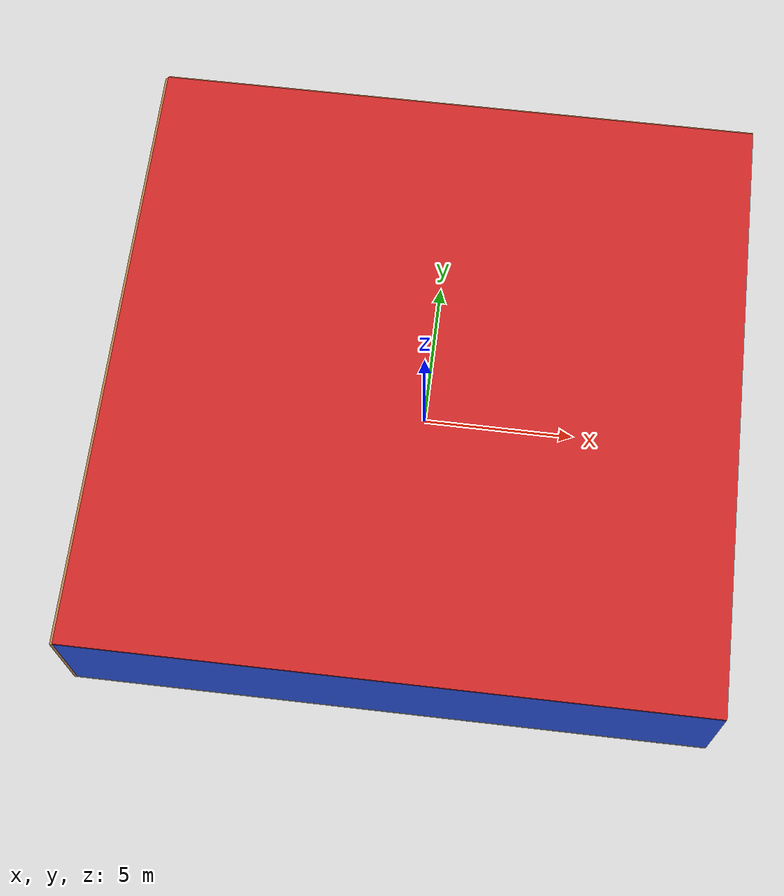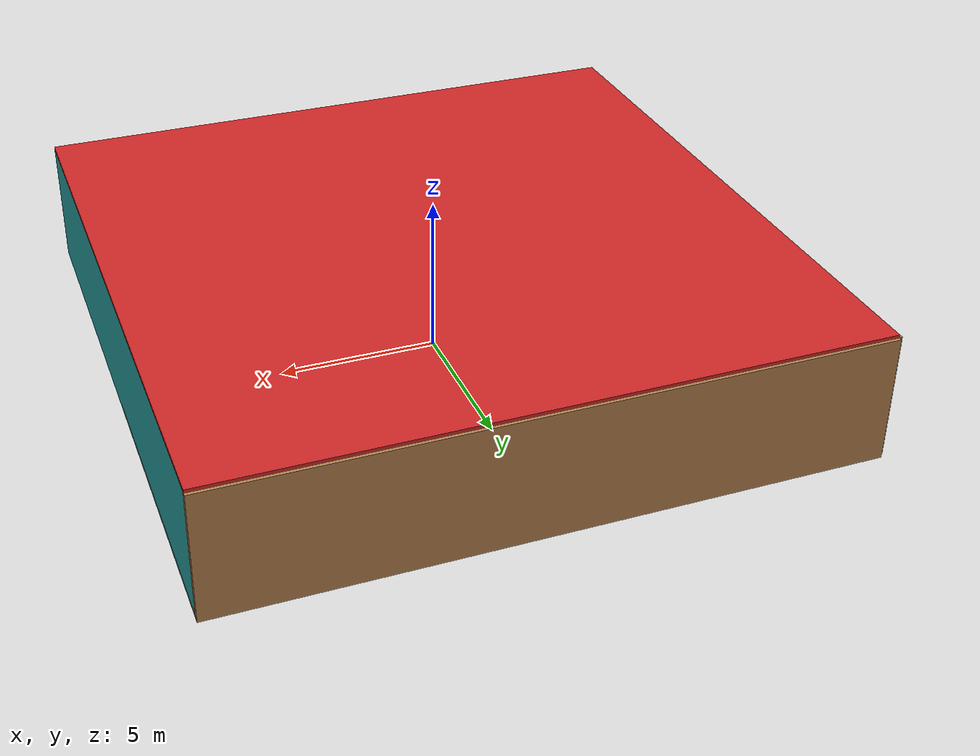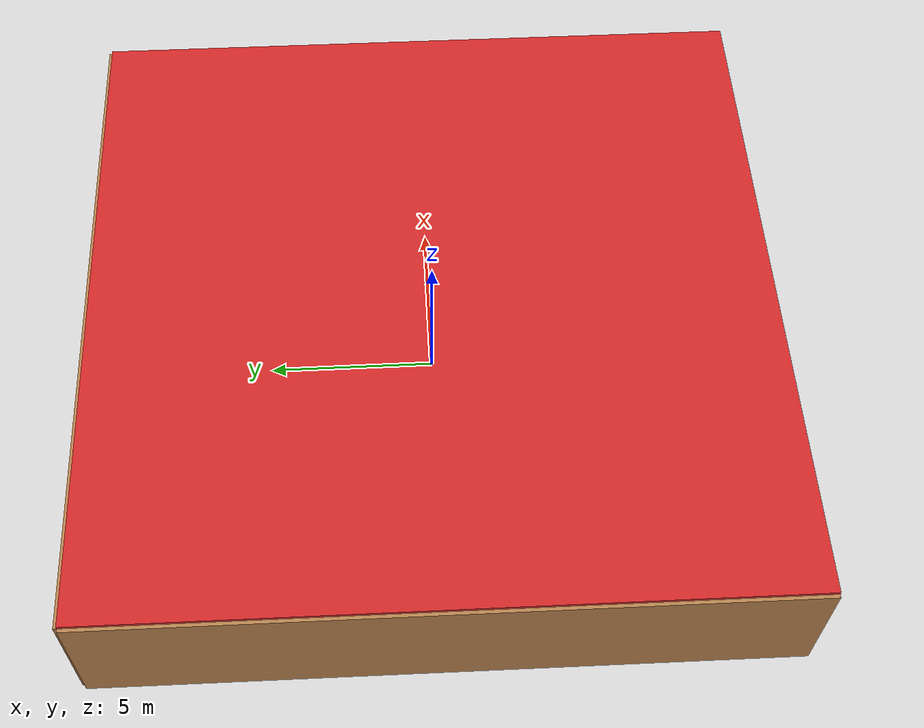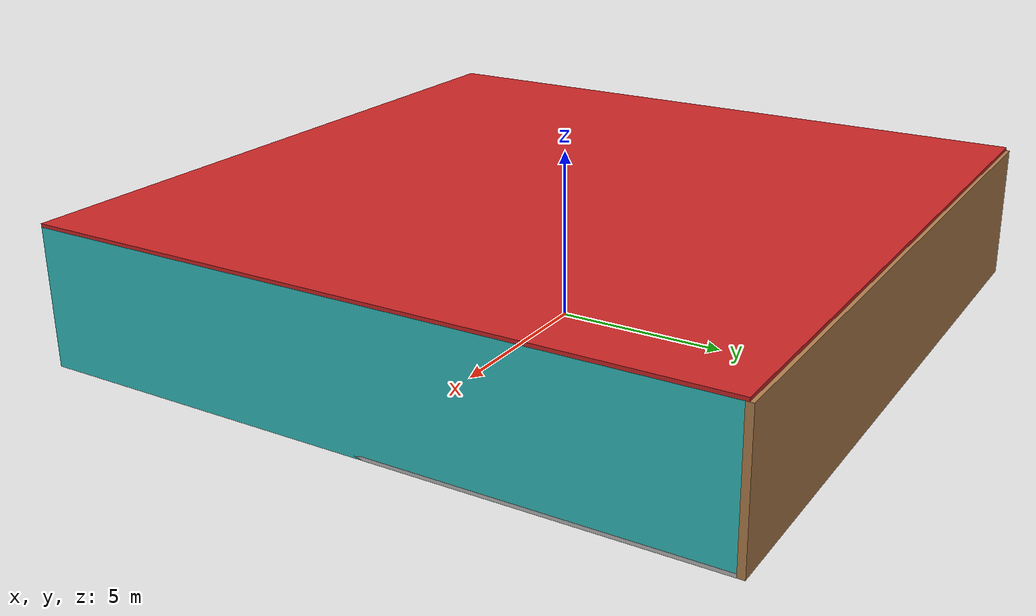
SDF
<sdf version="1.4">
 <world name="default">
  <physics type="ode">
   <max_step_size>0.001</max_step_size>
   <real_time_factor>1</real_time_factor>
   <real_time_update_rate>1000</real_time_update_rate>
   <gravity>0 0 -9.8</gravity>
  </physics>
  <scene><ambient>0.4 0.4 0.4 1</ambient><background>0.7 0.7 0.7 1</background><shadows>1</shadows></scene>
  <model name="Surrounding">
   <static>1</static>
   <link name="Ceiling">
    <collision name="Ceiling_Collision"><geometry><box><size>20 20 0.1</size></box></geometry></collision>
    <visual name="Ceiling_Visual">
     <geometry><box><size>20 20 0.1</size></box></geometry>
     <material>
      <script><uri>file://media/materials/scripts/gazebo.material</uri><name>Gazebo/RedBright</name></script>
     </material>
    </visual>
    <pose>0 0 4.05 0 0 0</pose>
   </link>
   <link name="Wall_South">
    <collision name="Wall_South_Collision">
     <geometry><box><size>20 0 4</size></box></geometry>
     <pose>0 0 2 0 -0 0</pose>
    </collision>
    <visual name="Wall_South_Visual">
     <pose>0 0 2 0 -0 0</pose>
     <geometry><box><size>20 0 4</size></box></geometry>
     <material>
      <script><uri>file://media/materials/scripts/gazebo.material</uri><name>Gazebo/BlueGlow</name></script>
     </material>
    </visual>
    <velocity_decay><linear>0</linear><angular>0</angular></velocity_decay>
    <pose>0 -10 0 0 -0 0</pose>
   </link>
   <link name="Wall_East">
    <collision name="Wall_21_Collision">
     <geometry><box><size>20 0 4</size></box></geometry>
     <pose>0 0 2 0 -0 0</pose>
    </collision>
    <visual name="Wall_21_Visual">
     <pose>0 0 2 0 -0 0</pose>
     <geometry><box><size>20 0 4</size></box></geometry>
     <material>
      <script>
       <uri>file://media/materials/scripts/gazebo.material</uri>
       <name>Gazebo/TurquoiseGlowOutline</name>
      </script>
     </material>
    </visual>
    <velocity_decay><linear>0</linear><angular>0</angular></velocity_decay>
    <pose>10 0 0 0 -0 1.5708</pose>
   </link>
   <link name="Wall_North">
    <collision name="Wall_22_Collision">
     <geometry><box><size>20 0.2 4</size></box></geometry>
     <pose>0 0 2 0 -0 0</pose>
    </collision>
    <visual name="Wall_22_Visual">
     <pose>0 0 2 0 -0 0</pose>
     <geometry><box><size>20 0.2 4</size></box></geometry>
     <material>
      <script><uri>file://media/materials/scripts/gazebo.material</uri><name>Gazebo/WoodFloor</name></script>
     </material>
    </visual>
    <velocity_decay><linear>0</linear><angular>0</angular></velocity_decay>
    <pose>0 10 0 0 -0 0</pose>
   </link>
   <link name="Wall_West">
    <collision name="Wall_23_Collision">
     <geometry><box><size>20 0.2 4</size></box></geometry>
     <pose>0 0 2 0 -0 0</pose>
    </collision>
    <visual name="Wall_23_Visual">
     <pose>0 0 2 0 -0 0</pose>
     <geometry><box><size>20 0.2 4</size></box></geometry>
     <material>
      <script><uri>file://media/materials/scripts/gazebo.material</uri><name>Gazebo/WoodFloor</name></script>
     </material>
    </visual>
    <velocity_decay><linear>0</linear><angular>0</angular></velocity_decay>
    <pose>-10 0 0 0 0 -1.5708</pose>
   </link>
   <link name="Ground_link">
    <collision name="collision">
     <pose>0 0 .05 0 -0 0</pose>
     <geometry><box><size>20 20 0.1</size></box></geometry>
    </collision>
    <visual name="visual">
     <pose>0 0 .05 0 -0 0</pose>
     <geometry><box><size>20 20 0.1</size></box></geometry>
     <material>
      <script><uri>file://media/materials/scripts/gazebo.material</uri><name>Gazebo/CloudySky</name></script>
     </material>
    </visual>
   </link>
   <static>1</static>
  </model>
  <spherical_coordinates>
   <surface_model>EARTH_WGS84</surface_model>
   <latitude_deg>0</latitude_deg>
   <longitude_deg>0</longitude_deg>
   <elevation>0</elevation>
   <heading_deg>0</heading_deg>
  </spherical_coordinates>
  <light name="lightball_0" type="diffuse">
   <diffuse>0.8 0.8 0.8 1</diffuse>
   <specular>0.2 0.2 0.2 1</specular>
   <attenuation>
    <range>100</range>
    <constant>0.7</constant>
    <linear>0.01</linear>
    <quadratic>0.001</quadratic>
   </attenuation>
   <direction>-0.5 0.1 -0.9</direction>
   <pose>-0.675170414889 3.6955001693 3.40380626807 0 0 0</pose>
  </light>
  <light name="lightball_1" type="diffuse">
   <diffuse>0.8 0.8 0.8 1</diffuse>
   <specular>0.2 0.2 0.2 1</specular>
   <attenuation>
    <range>100</range>
    <constant>0.7</constant>
    <linear>0.01</linear>
    <quadratic>0.001</quadratic>
   </attenuation>
   <direction>-0.5 0.1 -0.9</direction>
   <pose>8.29695837438 -6.99537153061 1.27918283089 0 0 0</pose>
  </light>
  <light name="lightball_2" type="diffuse">
   <diffuse>0.8 0.8 0.8 1</diffuse>
   <specular>0.2 0.2 0.2 1</specular>
   <attenuation>
    <range>100</range>
    <constant>0.7</constant>
    <linear>0.01</linear>
    <quadratic>0.001</quadratic>
   </attenuation>
   <direction>-0.5 0.1 -0.9</direction>
   <pose>4.09140000995 0.68274007651 2.43408225092 0 0 0</pose>
  </light>
  <light name="lightball_3" type="diffuse">
   <diffuse>0.8 0.8 0.8 1</diffuse>
   <specular>0.2 0.2 0.2 1</specular>
   <attenuation>
    <range>100</range>
    <constant>0.7</constant>
    <linear>0.01</linear>
    <quadratic>0.001</quadratic>
   </attenuation>
   <direction>-0.5 0.1 -0.9</direction>
   <pose>3.45101051176 8.75628473034 3.15624137384 0 0 0</pose>
  </light>
  <light name="lightball_4" type="diffuse">
   <diffuse>0.8 0.8 0.8 1</diffuse>
   <specular>0.2 0.2 0.2 1</specular>
   <attenuation>
    <range>100</range>
    <constant>0.7</constant>
    <linear>0.01</linear>
    <quadratic>0.001</quadratic>
   </attenuation>
   <direction>-0.5 0.1 -0.9</direction>
   <pose>0.469201430017 -1.4128862966 2.19794291445 0 0 0</pose>
  </light>
  <light name="lightball_5" type="diffuse">
   <diffuse>0.8 0.8 0.8 1</diffuse>
   <specular>0.2 0.2 0.2 1</specular>
   <attenuation>
    <range>100</range>
    <constant>0.7</constant>
    <linear>0.01</linear>
    <quadratic>0.001</quadratic>
   </attenuation>
   <direction>-0.5 0.1 -0.9</direction>
   <pose>4.30645475282 9.69672637376 0.969844303035 0 0 0</pose>
  </light>
  <light name="lightball_6" type="diffuse">
   <diffuse>0.8 0.8 0.8 1</diffuse>
   <specular>0.2 0.2 0.2 1</specular>
   <attenuation>
    <range>100</range>
    <constant>0.7</constant>
    <linear>0.01</linear>
    <quadratic>0.001</quadratic>
   </attenuation>
   <direction>-0.5 0.1 -0.9</direction>
   <pose>0.477365207831 4.32783117221 1.58657300116 0 0 0</pose>
  </light>
  <light name="lightball_7" type="diffuse">
   <diffuse>0.8 0.8 0.8 1</diffuse>
   <specular>0.2 0.2 0.2 1</specular>
   <attenuation>
    <range>100</range>
    <constant>0.7</constant>
    <linear>0.01</linear>
    <quadratic>0.001</quadratic>
   </attenuation>
   <direction>-0.5 0.1 -0.9</direction>
   <pose>-6.33866686101 5.25716199143 0.524758020504 0 0 0</pose>
  </light>
  <light name="lightball_8" type="diffuse">
   <diffuse>0.8 0.8 0.8 1</diffuse>
   <specular>0.2 0.2 0.2 1</specular>
   <attenuation>
    <range>100</range>
    <constant>0.7</constant>
    <linear>0.01</linear>
    <quadratic>0.001</quadratic>
   </attenuation>
   <direction>-0.5 0.1 -0.9</direction>
   <pose>-0.660100608048 -0.612275855086 2.55540641058 0 0 0</pose>
  </light>
  <light name="lightball_9" type="diffuse">
   <diffuse>0.8 0.8 0.8 1</diffuse>
   <specular>0.2 0.2 0.2 1</specular>
   <attenuation>
    <range>100</range>
    <constant>0.7</constant>
    <linear>0.01</linear>
    <quadratic>0.001</quadratic>
   </attenuation>
   <direction>-0.5 0.1 -0.9</direction>
   <pose>-4.43826994519 6.59521706251 3.26837314422 0 0 0</pose>
  </light>
  <light name="lightball_10" type="diffuse">
   <diffuse>0.8 0.8 0.8 1</diffuse>
   <specular>0.2 0.2 0.2 1</specular>
   <attenuation>
    <range>100</range>
    <constant>0.7</constant>
    <linear>0.01</linear>
    <quadratic>0.001</quadratic>
   </attenuation>
   <direction>-0.5 0.1 -0.9</direction>
   <pose>-3.63069092167 7.73578496878 3.59298457824 0 0 0</pose>
  </light>
  <light name="lightball_11" type="diffuse">
   <diffuse>0.8 0.8 0.8 1</diffuse>
   <specular>0.2 0.2 0.2 1</specular>
   <attenuation>
    <range>100</range>
    <constant>0.7</constant>
    <linear>0.01</linear>
    <quadratic>0.001</quadratic>
   </attenuation>
   <direction>-0.5 0.1 -0.9</direction>
   <pose>4.33134909744 -2.90903610717 3.56446832937 0 0 0</pose>
  </light>
  <light name="lightball_12" type="diffuse">
   <diffuse>0.8 0.8 0.8 1</diffuse>
   <specular>0.2 0.2 0.2 1</specular>
   <attenuation>
    <range>100</range>
    <constant>0.7</constant>
    <linear>0.01</linear>
    <quadratic>0.001</quadratic>
   </attenuation>
   <direction>-0.5 0.1 -0.9</direction>
   <pose>7.95302800959 -5.47416035841 1.77798113407 0 0 0</pose>
  </light>
  <light name="lightball_13" type="diffuse">
   <diffuse>0.8 0.8 0.8 1</diffuse>
   <specular>0.2 0.2 0.2 1</specular>
   <attenuation>
    <range>100</range>
    <constant>0.7</constant>
    <linear>0.01</linear>
    <quadratic>0.001</quadratic>
   </attenuation>
   <direction>-0.5 0.1 -0.9</direction>
   <pose>-5.86941374848 7.25846711081 3.88799752352 0 0 0</pose>
  </light>
  <include>
   <uri>model://robocup_3Dsim_goal</uri>
   <pose>-0.648209493575 0.759243417736 0 0 0 3.12563244187</pose>
  </include>
  <include><uri>model://table</uri><pose>0.443860010615 0.516666495945 0 0 0 1.70552147057</pose></include>
  <include><uri>model://cabinet</uri><pose>4.19275598618 -6.53940726722 0 0 0 1.4829205263</pose></include>
  <include>
   <uri>model://textured_shapes</uri>
   <pose>5.56565834178 -2.11728339546 0 0 0 2.62901510929</pose>
  </include>
  <include><uri>model://table</uri><pose>4.83480385279 4.32748427373 0 0 0 1.42571518658</pose></include>
 </world>
</sdf>

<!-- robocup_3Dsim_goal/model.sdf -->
<sdf version="1.5">
  <model name="robocup_3d_goal">
    <static>true</static>
    <link name="left_post">
      <pose>0 1.05 0.45 0 0 0</pose>
      <collision name="collision">
        <geometry>
          <cylinder>
            <radius>0.05</radius>
            <length>0.9</length>
          </cylinder>
        </geometry>
      </collision>
      <visual name="visual">
        <geometry>
          <cylinder>
            <radius>0.05</radius>
            <length>0.9</length>
          </cylinder>
        </geometry>
        <material>
          <script>
            <uri>file://media/materials/scripts/gazebo.material</uri>
            <name>Gazebo/ZincYellow</name>
          </script>
        </material>
      </visual>
    </link>
    <link name="left_support_horiz_lower">
      <pose>0.30 1.05 0.01 0 0 0</pose>
      <collision name="collision">
        <geometry>
          <box>
            <size>0.50 0.02 0.02</size>
          </box>
        </geometry>
      </collision>
      <visual name="visual">
        <geometry>
          <box>
            <size>0.50 0.02 0.02</size>
          </box>
        </geometry>
        <material>
          <script>
            <uri>file://media/materials/scripts/gazebo.material</uri>
            <name>Gazebo/White</name>
          </script>
        </material>
      </visual>
    </link>
    <link name="left_support_horiz_upper">
      <pose>0.30 1.05 0.79 0 0 0</pose>
      <collision name="collision">
        <geometry>
          <box>
            <size>0.50 0.02 0.02</size>
          </box>
        </geometry>
      </collision>
      <visual name="visual">
        <geometry>
          <box>
            <size>0.50 0.02 0.02</size>
          </box>
        </geometry>
        <material>
          <script>
            <uri>file://media/materials/scripts/gazebo.material</uri>
            <name>Gazebo/White</name>
          </script>
        </material>
      </visual>
    </link>
    <link name="left_support_vertical">
      <pose>0.56 1.05 0.4 0 1.5708 0</pose>
      <collision name="collision">
        <geometry>
          <box>
            <size>0.80 0.02 0.02</size>
          </box>
        </geometry>
      </collision>
      <visual name="visual">
        <geometry>
          <box>
            <size>0.80 0.02 0.02</size>
          </box>
        </geometry>
        <material>
          <script>
            <uri>file://media/materials/scripts/gazebo.material</uri>
            <name>Gazebo/White</name>
          </script>
        </material>
      </visual>
    </link>
    <link name="right_support_horiz_lower">
      <pose>0.30 -1.05 0.01 0 0 0</pose>
      <collision name="collision">
        <geometry>
          <box>
            <size>0.50 0.02 0.02</size>
          </box>
        </geometry>
      </collision>
      <visual name="visual">
        <geometry>
          <box>
            <size>0.50 0.02 0.02</size>
          </box>
        </geometry>
        <material>
          <script>
            <uri>file://media/materials/scripts/gazebo.material</uri>
            <name>Gazebo/White</name>
          </script>
        </material>
      </visual>
    </link>
    <link name="right_support_horiz_upper">
      <pose>0.30 -1.05 0.79 0 0 0</pose>
      <collision name="collision">
        <geometry>
          <box>
            <size>0.50 0.02 0.02</size>
          </box>
        </geometry>
      </collision>
      <visual name="visual">
        <geometry>
          <box>
            <size>0.50 0.02 0.02</size>
          </box>
        </geometry>
        <material>
          <script>
            <uri>file://media/materials/scripts/gazebo.material</uri>
            <name>Gazebo/White</name>
          </script>
        </material>
      </visual>
    </link>
    <link name="right_support_vertical">
      <pose>0.56 -1.05 0.4 0 1.5708 0</pose>
      <collision name="collision">
        <geometry>
          <box>
            <size>0.80 0.02 0.02</size>
          </box>
        </geometry>
      </collision>
      <visual name="visual">
        <geometry>
          <box>
            <size>0.80 0.02 0.02</size>
          </box>
        </geometry>
        <material>
          <script>
            <uri>file://media/materials/scripts/gazebo.material</uri>
            <name>Gazebo/White</name>
          </script>
        </material>
      </visual>
    </link>
    <link name="center_support_horiz_lower">
      <pose>0.56 0 0.01 0 1.5708 0</pose>
      <collision name="collision">
        <geometry>
          <box>
            <size>0.02 2.08 0.02</size>
          </box>
        </geometry>
      </collision>
      <visual name="visual">
        <geometry>
          <box>
            <size>0.02 2.08 0.02</size>
          </box>
        </geometry>
        <material>
          <script>
            <uri>file://media/materials/scripts/gazebo.material</uri>
            <name>Gazebo/White</name>
          </script>
        </material>
      </visual>
    </link>
    <link name="center_support_horiz_upper">
      <pose>0.56 0 0.79 0 1.5708 0</pose>
      <collision name="collision">
        <geometry>
          <box>
            <size>0.02 2.08 0.02</size>
          </box>
        </geometry>
      </collision>
      <visual name="visual">
        <geometry>
          <box>
            <size>0.02 2.08 0.02</size>
          </box>
        </geometry>
        <material>
          <script>
            <uri>file://media/materials/scripts/gazebo.material</uri>
            <name>Gazebo/White</name>
          </script>
        </material>
      </visual>
    </link>
    <link name="right_post">
      <pose>0 -1.05 0.45 0 0 0</pose>
      <collision name="collision">
        <geometry>
          <cylinder>
            <radius>0.05</radius>
            <length>0.9</length>
          </cylinder>
        </geometry>
      </collision>
      <visual name="visual">
        <geometry>
          <cylinder>
            <radius>0.05</radius>
            <length>0.9</length>
          </cylinder>
        </geometry>
        <material>
          <script>
            <uri>file://media/materials/scripts/gazebo.material</uri>
            <name>Gazebo/ZincYellow</name>
          </script>
        </material>
      </visual>
    </link>
    <link name="crossbar">
      <pose>0 0 0.85 1.57 1.57 0</pose>
      <collision name="collision">
        <geometry>
          <cylinder>
            <radius>0.05</radius>
            <length>2.0</length>
          </cylinder>
        </geometry>
      </collision>
      <visual name="visual">
        <geometry>
          <cylinder>
            <radius>0.05</radius>
            <length>2.0</length>
          </cylinder>
        </geometry>
        <material>
          <script>
            <uri>file://media/materials/scripts/gazebo.material</uri>
            <name>Gazebo/ZincYellow</name>
          </script>
        </material>
      </visual>
    </link>
    <link name="center_net">
      <pose>0.56 0 0.40 0 0 0</pose>
      <collision name="collision">
        <geometry>
          <box>
            <size>0.01 2.1 0.80</size>
          </box>
        </geometry>
      </collision>
      <visual name="visual">
        <geometry>
          <box>
            <size>0.01 2.1 0.80</size>
          </box>
        </geometry>
        <material>
          <script>
            <uri>model://../model_source/models/robocup09_spl_field/materials/scripts/</uri>
            <uri>model://../model_source/models/robocup09_spl_field/materials/textures/</uri>
            <name>RoboCup/Net</name>
          </script>
        </material>
      </visual>
    </link>
    <link name="left_net">
      <pose>0.30 1.05 0.40 0 0 0</pose>
      <collision name="collision">
        <geometry>
          <box>
            <size>0.50 0.01 0.76</size>
          </box>
        </geometry>
      </collision>
      <visual name="visual">
        <geometry>
          <box>
            <size>0.50 0.01 0.76</size>
          </box>
        </geometry>
        <material>
          <script>
            <uri>model://../model_source/models/robocup09_spl_field/materials/scripts/</uri>
            <uri>model://../model_source/models/robocup09_spl_field/materials/textures/</uri>
            <name>RoboCup/Net</name>
          </script>
        </material>
      </visual>
    </link>
    <link name="right_net">
      <pose>0.30 -1.05 0.40 0 0 0</pose>
      <collision name="collision">
        <geometry>
          <box>
            <size>0.50 0.01 0.76</size>
          </box>
        </geometry>
      </collision>
      <visual name="visual">
        <geometry>
          <box>
            <size>0.50 0.01 0.76</size>
          </box>
        </geometry>
        <material>
          <script>
            <uri>model://../model_source/models/robocup09_spl_field/materials/scripts/</uri>
            <uri>model://../model_source/models/robocup09_spl_field/materials/textures/</uri>
            <name>RoboCup/Net</name>
          </script>
        </material>
      </visual>
    </link>
  </model>
</sdf>

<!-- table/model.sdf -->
<sdf version="1.5">
  <model name="table">
    <static>true</static>
    <link name="link">
      <collision name="surface">
        <pose>0 0 1.0 0 0 0</pose>
        <geometry>
          <box>
            <size>1.5 0.8 0.03</size>
          </box>
        </geometry>
        <surface>
          <friction>
            <ode>
              <mu>0.6</mu>
              <mu2>0.6</mu2>
            </ode>
          </friction>
        </surface>
      </collision>
      <visual name="visual1">
        <pose>0 0 1.0 0 0 0</pose>
        <geometry>
          <box>
            <size>1.5 0.8 0.03</size>
          </box>
        </geometry>
        <material>
          <script>
            <uri>model://media/materials/scripts/gazebo.material</uri>
            <name>Gazebo/Wood</name>
          </script>
        </material>
      </visual>
      <collision name="front_left_leg">
        <pose>0.68 0.38 0.5 0 0 0</pose>
        <geometry>
          <cylinder>
            <radius>0.02</radius>
            <length>1.0</length>
          </cylinder>
        </geometry>
      </collision>
      <visual name="front_left_leg">
        <pose>0.68 0.38 0.5 0 0 0</pose>
        <geometry>
          <cylinder>
            <radius>0.02</radius>
            <length>1.0</length>
          </cylinder>
        </geometry>
        <material>
          <script>
            <uri>model://media/materials/scripts/gazebo.material</uri>
            <name>Gazebo/Grey</name>
          </script>
        </material>
      </visual>
      <collision name="front_right_leg">
        <pose>0.68 -0.38 0.5 0 0 0</pose>
        <geometry>
          <cylinder>
            <radius>0.02</radius>
            <length>1.0</length>
          </cylinder>
        </geometry>
      </collision>
      <visual name="front_right_leg">
        <pose>0.68 -0.38 0.5 0 0 0</pose>
        <geometry>
          <cylinder>
            <radius>0.02</radius>
            <length>1.0</length>
          </cylinder>
        </geometry>
        <material>
          <script>
            <uri>model://media/materials/scripts/gazebo.material</uri>
            <name>Gazebo/Grey</name>
          </script>
        </material>
      </visual>
      <collision name="back_right_leg">
        <pose>-0.68 -0.38 0.5 0 0 0</pose>
        <geometry>
          <cylinder>
            <radius>0.02</radius>
            <length>1.0</length>
          </cylinder>
        </geometry>
      </collision>
      <visual name="back_right_leg">
        <pose>-0.68 -0.38 0.5 0 0 0</pose>
        <geometry>
          <cylinder>
            <radius>0.02</radius>
            <length>1.0</length>
          </cylinder>
        </geometry>
        <material>
          <script>
            <uri>model://media/materials/scripts/gazebo.material</uri>
            <name>Gazebo/Grey</name>
          </script>
        </material>
      </visual>
      <collision name="back_left_leg">
        <pose>-0.68 0.38 0.5 0 0 0</pose>
        <geometry>
          <cylinder>
            <radius>0.02</radius>
            <length>1.0</length>
          </cylinder>
        </geometry>
      </collision>
      <visual name="back_left_leg">
        <pose>-0.68 0.38 0.5 0 0 0</pose>
        <geometry>
          <cylinder>
            <radius>0.02</radius>
            <length>1.0</length>
          </cylinder>
        </geometry>
        <material>
          <script>
            <uri>model://media/materials/scripts/gazebo.material</uri>
            <name>Gazebo/Grey</name>
          </script>
        </material>
      </visual>
    </link>
  </model>
</sdf>

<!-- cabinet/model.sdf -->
<sdf version="1.5">
  <model name="cabinet">
    <static>true</static>
    <link name="cabinet_bottom_plate">
      <inertial>
        <pose>0 0 -1 0 0 0</pose>
        <inertia>
          <ixx>2.050000</ixx>
          <ixy>0</ixy>
          <ixz>0</ixz>
          <iyy>2.050000</iyy>
          <iyz>0</iyz>
          <izz>2.050000</izz>
        </inertia>
        <mass>25.000000</mass>
      </inertial>
      <collision name="cabinet_bottom_plate_geom">
        <pose>0 0 0.010000 0 0 0</pose>
        <geometry>
          <box>
            <size>0.450000 0.450000 0.020000</size>
          </box>
        </geometry>
      </collision>
      <visual name="cabinet_bottom_plate_geom_visual">
        <pose>0 0 0.010000 0 0 0</pose>
        <geometry>
          <box>
            <size>0.450000 0.450000 0.020000</size>
          </box>
        </geometry>
        <material>
          <script>
            <uri>model://media/materials/scripts/gazebo.material</uri>
            <name>Gazebo/Wood</name>
          </script>
        </material>
      </visual>
      <collision name="cabinet_bottom_plate_geom_cabinet_back_plate">
        <pose>0.235000 0 0.510000 0 0 0</pose>
        <geometry>
          <box>
            <size>0.020000 0.450000 1.020000</size>
          </box>
        </geometry>
      </collision>
      <visual name="cabinet_bottom_plate_geom_cabinet_back_plate_visual">
        <pose>0.235000 0 0.510000 0 0 0</pose>
        <geometry>
          <box>
            <size>0.020000 0.450000 1.020000</size>
          </box>
        </geometry>
        <material>
          <script>
            <uri>model://media/materials/scripts/gazebo.material</uri>
            <name>Gazebo/Wood</name>
          </script>
        </material>
      </visual>
      <collision name="cabinet_bottom_plate_geom_cabinet_left_plate">
        <pose>0 0.235000 0.510000 0 0 0</pose>
        <geometry>
          <box>
            <size>0.450000 0.020000 1.020000</size>
          </box>
        </geometry>
      </collision>
      <visual name="cabinet_bottom_plate_geom_cabinet_left_plate_visual">
        <pose>0 0.235000 0.510000 0 0 0</pose>
        <geometry>
          <box>
            <size>0.450000 0.020000 1.020000</size>
          </box>
        </geometry>
        <material>
          <script>
            <uri>model://media/materials/scripts/gazebo.material</uri>
            <name>Gazebo/Wood</name>
          </script>
        </material>
      </visual>
      <collision name="cabinet_bottom_plate_geom_cabinet_middle_plate">
        <pose>0 0 0.510000 0 0 0</pose>
        <geometry>
          <box>
            <size>0.450000 0.450000 0.020000</size>
          </box>
        </geometry>
      </collision>
      <visual name="cabinet_bottom_plate_geom_cabinet_middle_plate_visual">
        <pose>0 0 0.510000 0 0 0</pose>
        <geometry>
          <box>
            <size>0.450000 0.450000 0.020000</size>
          </box>
        </geometry>
        <material>
          <script>
            <uri>model://media/materials/scripts/gazebo.material</uri>
            <name>Gazebo/Wood</name>
          </script>
        </material>
      </visual>
      <collision name="cabinet_bottom_plate_geom_cabinet_right_plate">
        <pose>0 -0.235000 0.510000 0 0 0</pose>
        <geometry>
          <box>
            <size>0.450000 0.020000 1.020000</size>
          </box>
        </geometry>
      </collision>
      <visual name="cabinet_bottom_plate_geom_cabinet_right_plate_visual">
        <pose>0 -0.235000 0.510000 0 0 0</pose>
        <geometry>
          <box>
            <size>0.450000 0.020000 1.020000</size>
          </box>
        </geometry>
        <material>
          <script>
            <uri>model://media/materials/scripts/gazebo.material</uri>
            <name>Gazebo/Wood</name>
          </script>
        </material>
      </visual>
      <collision name="cabinet_bottom_plate_geom_cabinet_top_plate">
        <pose>0 0 1.010000 0 0 0</pose>
        <geometry>
          <box>
            <size>0.450000 0.450000 0.020000</size>
          </box>
        </geometry>
      </collision>
      <visual name="cabinet_bottom_plate_geom_cabinet_top_plate_visual">
        <pose>0 0 1.010000 0 0 0</pose>
        <geometry>
          <box>
            <size>0.450000 0.450000 0.020000</size>
          </box>
        </geometry>
        <material>
          <script>
            <uri>model://media/materials/scripts/gazebo.material</uri>
            <name>Gazebo/Wood</name>
          </script>
        </material>
      </visual>
    </link>
  </model>
</sdf>

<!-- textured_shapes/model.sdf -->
<sdf version="1.6">
  <model name="textured_shapes">
    <pose>0 0 0.5 0 0 0</pose>
    <link name="box">
      <pose>0 -1.5 0 0 0 0</pose>
      <collision name="collision">
        <geometry>
          <box>
            <size>1 1 1</size>
          </box>
        </geometry>
      </collision>
      <visual name="visual">
        <geometry>
          <box>
            <size>1 1 1</size>
          </box>
        </geometry>
        <material>
          <script>
            <uri>model://../model_source/models/textured_shapes/materials/scripts</uri>
            <uri>model://../model_source/models/textured_shapes/materials/textures</uri>
            <name>TexturedShape/Squares</name>
          </script>
        </material>
      </visual>
    </link>
    <link name="sphere">
      <collision name="collision">
        <geometry>
          <sphere>
            <radius>0.5</radius>
          </sphere>
        </geometry>
      </collision>
      <visual name="visual">
        <geometry>
          <sphere>
            <radius>0.5</radius>
          </sphere>
        </geometry>
        <material>
          <script>
            <uri>model://../model_source/models/textured_shapes/materials/scripts</uri>
            <uri>model://../model_source/models/textured_shapes/materials/textures</uri>
            <name>TexturedShape/Squares</name>
          </script>
        </material>
      </visual>
    </link>
    <link name="cylinder">
      <pose>0 1.5 0 0 0 0</pose>
      <collision name="collision">
        <geometry>
          <cylinder>
            <radius>0.5</radius>
            <length>1</length>
          </cylinder>
        </geometry>
      </collision>
      <visual name="visual">
        <geometry>
          <cylinder>
            <radius>0.5</radius>
            <length>1</length>
          </cylinder>
        </geometry>
        <material>
          <script>
            <uri>model://../model_source/models/textured_shapes/materials/scripts</uri>
            <uri>model://../model_source/models/textured_shapes/materials/textures</uri>
            <name>TexturedShape/Squares</name>
          </script>
        </material>
      </visual>
    </link>
  </model>
</sdf>
